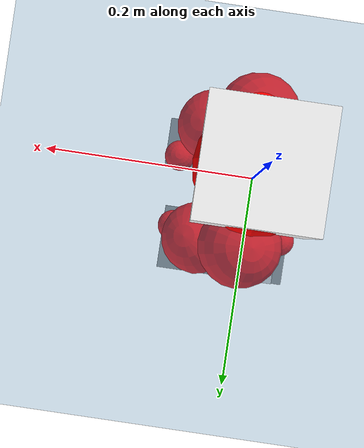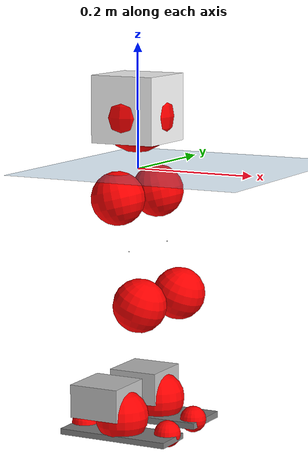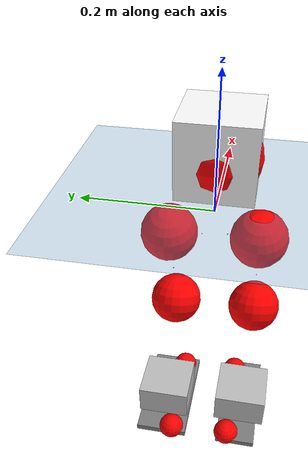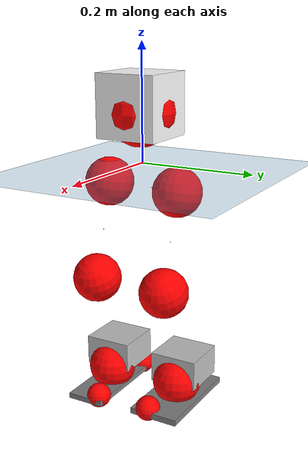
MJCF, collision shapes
<mujoco model="pi_12dof_release_v1">
  <compiler angle="radian" assetdir="assets" balanceinertia="true" inertiafromgeom="false"/>

  <option timestep="0.005" density="1.2" viscosity="2e-05"/>

  <size nkey="1"/>

  <visual>
    <quality shadowsize="8192"/>
    <map shadowclip="0.5"/>
  </visual>

  <default>
    <default class="/">
      <joint armature="0.01" damping="0.01" frictionloss="0.01"/>
      <geom contype="0" conaffinity="0" group="1" solref="-1000 -80"/>
      <site size="0.01 0.005 0.005" group="5"/>
      <general forcelimited="true" biastype="affine" gainprm="20" biasprm="0 -20 -0.5"/>
      <default class="foot">
        <geom size="0.0845 0.036 0.005" type="box" condim="6" group="4" priority="1" friction="0.9 0.2 0.2" solimp="0.015 1 0.005"/>
      </default>
      <default class="reward_collision_sphere">
        <geom group="5" rgba="1 0 0 1"/>
      </default>
    </default>
  </default>

  <asset>
    <texture type="skybox" colorspace="auto" name="//unnamed_texture_0" builtin="gradient" rgb1="0.95 0.95 0.95" rgb2="0.95 0.95 0.95" width="100" height="600"/>
    <texture type="2d" colorspace="auto" name="texplane" builtin="checker" rgb1="0.345 0.575 0.748" rgb2="0.345 0.575 0.748" markrgb="1 1 1" width="512" height="512"/>
    <material name="MatPlane" class="/" texture="texplane" texuniform="true" texrepeat="2 2" specular="0.9"/>
    <mesh name="baselink_1" class="/" file="baselink_1.STL"/>
    <mesh name="r_hip_pitch_link" class="/" file="r_hip_pitch_link.STL"/>
    <mesh name="r_hip_roll_link" class="/" file="r_hip_roll_link.STL"/>
    <mesh name="r_thigh_link" class="/" file="r_thigh_link.STL"/>
    <mesh name="r_calf_link" class="/" file="r_calf_link.STL"/>
    <mesh name="r_ankle_pitch_link" class="/" file="r_ankle_pitch_link.STL"/>
    <mesh name="r_ankle_roll_link" class="/" file="r_ankle_roll_link.STL"/>
    <mesh name="l_hip_pitch_link" class="/" file="l_hip_pitch_link.STL"/>
    <mesh name="l_hip_roll_link" class="/" file="l_hip_roll_link.STL"/>
    <mesh name="l_thigh_link" class="/" file="l_thigh_link.STL"/>
    <mesh name="l_calf_link" class="/" file="l_calf_link.STL"/>
    <mesh name="l_ankle_pitch_link" class="/" file="l_ankle_pitch_link.STL"/>
    <mesh name="l_ankle_roll_link" class="/" file="l_ankle_roll_link.STL"/>
  </asset>

  <worldbody>
    <geom name="floor" class="/" size="100 100 0.125" type="plane" group="0" material="MatPlane"/>
    <light name="toplight_shadow" class="/" pos="0 0 5" dir="0.0990148 0.0990148 -0.990148" type="directional" ambient="0.04 0.04 0.04" diffuse="0.55 0.55 0.55" specular="0.12 0.12 0.12"/>
    <light name="toplight_fill" class="/" pos="0 0 5" dir="0.0990148 0.0990148 -0.990148" type="directional" castshadow="false" ambient="0.04 0.04 0.04" diffuse="0.3 0.3 0.3" specular="0.08 0.08 0.08"/>
    <body name="trunk" pos="0.000276869 -0.00266326 -0.000372707" quat="1 -2.18654e-05 -5.15476e-06 5.70874e-06">
      <inertial pos="0.00238794 -0.00317081 0.049382" quat="0.689871 0.0176453 0.00799084 0.723673" mass="2.61212" diaginertia="0.016961 0.00435959 0.0113643"/>
      <joint name="//unnamed_joint_0" type="free"/>
      <geom name="//unnamed_geom_1" class="/" type="mesh" density="0" rgba="1 1 1 1" mesh="baselink_1"/>
      <geom name="//unnamed_geom_2" class="/" size="0.0535508 0.0535508 0.0535508" pos="0 0 0.0978877" type="box" rgba="1 1 1 1"/>
      <geom name="//unnamed_geom_3" class="reward_collision_sphere" size="0.0589058" pos="0 0 0.0856517"/>
      <site name="imu" class="/" pos="0.0129781 0.00844783 -0.0132948" size="0.0107102"/>
      <camera name="track" class="/" pos="0 -1.73724 0" quat="0.707107 0.707107 0 0" mode="trackcom"/>
      <camera name="ego_camera" class="/" pos="0.0840622 0 0.220247" quat="-0.5 -0.5 0.5 0.5"/>
      <body name="r_hip_pitch_link" pos="0.00154795 -0.0176251 -0.0379018" quat="0.99214 0.000767206 -0.125129 -0.000928605">
        <inertial pos="0.00147597 -0.0483572 0.00173659" quat="-0.0198285 0.707385 -0.0302886 0.705901" mass="0.436495" diaginertia="0.000191723 4.62547e-05 0.00022797"/>
        <joint name="r_hip_pitch_joint" class="/" pos="0 0 0" axis="0.00283402 -0.999992 0.00272816" range="-1.7554 1.21666" armature="0.010983" damping="0.0126974" frictionloss="0.011172"/>
        <geom name="//unnamed_geom_4" class="/" type="mesh" density="0" rgba="0.75294 0.75294 0.75294 1" mesh="r_hip_pitch_link"/>
        <geom name="//unnamed_geom_5" class="/" size="0.000535508 0.000535508 0.000535508" type="box" rgba="0.75294 0.75294 0.75294 1"/>
        <body name="r_hip_roll_link" pos="-0.0015866 -0.0465337 -0.000590757" quat="0.999999 0.000708667 -0.00103902 -0.000258685">
          <inertial pos="0.00124511 0.00184068 -0.0756659" quat="0.701217 -0.0911446 -0.0869872 0.701727" mass="0.476663" diaginertia="0.000589692 0.000138267 0.000355583"/>
          <joint name="r_hip_roll_joint" class="/" pos="0 0 0" axis="-0.999946 -0.00228103 -0.0101466" range="-0.129394 0.551887" armature="0.00941573" damping="0.0137769" frictionloss="0.0106889"/>
          <geom name="//unnamed_geom_6" class="/" type="mesh" density="0" rgba="0.75294 0.75294 0.75294 1" mesh="r_hip_roll_link"/>
          <geom name="//unnamed_geom_7" class="/" size="0.000535508 0.000535508 0.000535508" type="box" rgba="0.75294 0.75294 0.75294 1"/>
          <geom name="//unnamed_geom_8" class="reward_collision_sphere" size="0.0428406"/>
          <body name="r_thigh_link" pos="-0.00110891 -0.00224148 -0.0850408" quat="1 0.000781116 0.000450231 2.19324e-05">
            <inertial pos="0.00283662 0.00075001 -0.0605286" quat="0.737898 0.674911 -0.000335128 -0.0011514" mass="0.139483" diaginertia="0.000213208 4.82142e-05 0.000153339"/>
            <joint name="r_thigh_joint" class="/" pos="0 0 0" axis="0.000589956 0.00397441 -0.999992" range="-0.349554 0.593631" armature="0.0104003" damping="0.00439004" frictionloss="0.0108265"/>
            <geom name="//unnamed_geom_9" class="/" type="mesh" density="0" rgba="0.75294 0.75294 0.75294 1" mesh="r_thigh_link"/>
            <geom name="//unnamed_geom_10" class="/" size="0.000535508 0.000535508 0.000535508" type="box" rgba="0.75294 0.75294 0.75294 1"/>
            <body name="r_calf_link" pos="-0.00157762 -0.00210399 -0.0865532" quat="0.947708 -5.22708e-05 0.31914 -6.38458e-05">
              <inertial pos="-0.000883852 -0.00173425 -0.0863207" quat="0.999988 -0.0027224 -5.00034e-05 0.00412348" mass="0.96154" diaginertia="0.00624021 0.0016768 0.000493292"/>
              <joint name="r_calf_joint" class="/" pos="0 0 0" axis="-0.00391549 -0.999966 0.00726957" range="-1.60615 0.676262" armature="0.011153" damping="0.00822597" frictionloss="0.0113576"/>
              <geom name="//unnamed_geom_11" class="/" type="mesh" density="0" rgba="0.75294 0.75294 0.75294 1" mesh="r_calf_link"/>
              <geom name="//unnamed_geom_12" class="/" size="0.000535508 0.000535508 0.000535508" type="box" rgba="0.75294 0.75294 0.75294 1"/>
              <geom name="//unnamed_geom_13" class="reward_collision_sphere" size="0.0428406"/>
              <body name="r_ankle_pitch_link" pos="0.00328732 0.00259233 -0.16956" quat="0.980063 0.000335402 -0.198685 0.000207032">
                <inertial pos="0.00401581 0.000776166 5.1919e-05" quat="0.0062144 0.707684 -0.0108348 0.706419" mass="0.230438" diaginertia="0.000561545 0.00011329 0.000338829"/>
                <joint name="r_ankle_pitch_joint" class="/" pos="0 0 0" axis="0.00231196 -0.999905 -0.0136223" range="-1.2752 0.554443" armature="0.0108357" damping="0.0201037" frictionloss="0.0106508"/>
                <geom name="//unnamed_geom_14" class="/" type="mesh" density="0" rgba="0.75294 0.75294 0.75294 1" mesh="r_ankle_pitch_link"/>
                <geom name="//unnamed_geom_15" class="/" size="0.0417696 0.0428406 0.0267754" type="box" rgba="0.75294 0.75294 0.75294 1"/>
                <body name="r_ankle_roll_link" pos="0.0831613 0.00139664 -0.00192202" quat="0.999999 -0.00139945 -7.2251e-05 -5.54921e-05">
                  <inertial pos="-0.0262432 0.000228643 -0.0154386" quat="0.552653 0.429393 0.439367 0.563163" mass="0.633878" diaginertia="0.00197476 0.000507623 0.000772731"/>
                  <joint name="r_ankle_roll_joint" class="/" pos="0 0 0" axis="-0.999998 -0.00163313 -0.000631894" range="-0.200192 0.155839" armature="0.0105676" damping="0.00879173" frictionloss="0.010001"/>
                  <geom name="//unnamed_geom_16" class="/" type="mesh" density="0" rgba="0.75294 0.75294 0.75294 1" mesh="r_ankle_roll_link"/>
                  <geom name="//unnamed_geom_17" class="/" type="mesh" rgba="0.75294 0.75294 0.75294 1" mesh="r_ankle_roll_link"/>
                  <geom name="right_foot" class="foot" size="0.0936427 0.0335134 0.00471334" pos="-0.0571623 0 -0.0538382"/>
                  <geom name="//unnamed_geom_19" class="reward_collision_sphere" size="0.0428406" pos="-0.0560414 0 -0.0244719"/>
                  <geom name="//unnamed_geom_20" class="reward_collision_sphere" size="0.0214203" pos="0.0168124 0.0173724 -0.0489438"/>
                  <geom name="//unnamed_geom_21" class="reward_collision_sphere" size="0.0214203" pos="-0.134499 0.0173724 -0.0489438"/>
                  <site name="right_foot" class="foot" pos="-0.0571623 0 -0.0538382" size="0.0107102"/>
                </body>
              </body>
            </body>
          </body>
        </body>
      </body>
      <body name="l_hip_pitch_link" pos="0.000330495 0.0200401 -0.0405616" quat="0.992192 6.13942e-05 -0.124721 -1.84318e-05">
        <inertial pos="0.00139079 0.0441378 0.000889846" quat="-0.0376312 0.704598 0.027425 0.708077" mass="0.478891" diaginertia="0.000227804 5.2379e-05 0.00027864"/>
        <joint name="l_hip_pitch_joint" class="/" pos="0 0 0" axis="-0.000844339 0.999999 0.000641204" stiffness="0.0100905" range="-1.25489 1.7492" armature="0.0104775" damping="0" frictionloss="0.0119307"/>
        <geom name="//unnamed_geom_22" class="/" type="mesh" density="0" rgba="0.75294 0.75294 0.75294 1" mesh="l_hip_pitch_link"/>
        <geom name="//unnamed_geom_23" class="/" size="0.000535508 0.000535508 0.000535508" type="box" rgba="0.75294 0.75294 0.75294 1"/>
        <body name="l_hip_roll_link" pos="-0.00159139 0.0489302 -0.00229877" quat="1 -0.000222991 3.47753e-05 -9.90114e-05">
          <inertial pos="-0.00278448 0.000409214 -0.0771667" quat="0.703492 -0.0767756 -0.083746 0.701563" mass="0.491837" diaginertia="0.000596136 0.00013848 0.000354808"/>
          <joint name="l_hip_roll_joint" class="/" pos="0 0 0" axis="-0.999932 -0.00935595 -0.0069235" stiffness="0.00131817" range="-0.554127 0.123609" armature="0.0121663" damping="0.00189006" frictionloss="0.0107934"/>
          <geom name="//unnamed_geom_24" class="/" type="mesh" density="0" rgba="0.75294 0.75294 0.75294 1" mesh="l_hip_roll_link"/>
          <geom name="//unnamed_geom_25" class="/" size="0.000535508 0.000535508 0.000535508" type="box" rgba="0.75294 0.75294 0.75294 1"/>
          <geom name="//unnamed_geom_26" class="reward_collision_sphere" size="0.0428406"/>
          <body name="l_thigh_link" pos="-0.00199126 -0.00260018 -0.0842266" quat="1 -0.000378696 -4.97566e-05 6.34193e-05">
            <inertial pos="-1.60479e-05 -0.00111498 -0.057016" quat="0.676117 0.736794 0.000722684 -0.000297846" mass="0.145264" diaginertia="0.000234211 4.77898e-05 0.000162825"/>
            <joint name="l_thigh_joint" class="/" pos="0 0 0" axis="6.13249e-06 0.000154966 -1" range="-0.61825 0.296222" armature="0.00956904" damping="0.0102213" frictionloss="0.0107426"/>
            <geom name="//unnamed_geom_27" class="/" type="mesh" density="0" rgba="0.75294 0.75294 0.75294 1" mesh="l_thigh_link"/>
            <geom name="//unnamed_geom_28" class="/" size="0.000535508 0.000535508 0.000535508" type="box" rgba="0.75294 0.75294 0.75294 1"/>
            <body name="l_calf_link" pos="0.000608653 -7.15456e-06 -0.0872758" quat="0.94798 -0.000820451 0.318328 -0.000295424">
              <inertial pos="-0.00013241 0.00553375 -0.0881878" quat="0.999983 0.0046691 -0.00288205 0.00171581" mass="1.02603" diaginertia="0.00656964 0.00177115 0.000505623"/>
              <joint name="l_calf_joint" class="/" pos="0 0 0" axis="0.0123412 0.999921 0.00228281" range="-0.669296 1.64615" armature="0.0104399" damping="0.00468735" frictionloss="0.0106806"/>
              <geom name="//unnamed_geom_29" class="/" type="mesh" density="0" rgba="0.75294 0.75294 0.75294 1" mesh="l_calf_link"/>
              <geom name="//unnamed_geom_30" class="/" size="0.000535508 0.000535508 0.000535508" type="box" rgba="0.75294 0.75294 0.75294 1"/>
              <geom name="//unnamed_geom_31" class="reward_collision_sphere" size="0.0428406"/>
              <body name="l_ankle_pitch_link" pos="-9.85331e-05 0.00386741 -0.171079" quat="0.979891 0.0010299 -0.199529 0.000276267">
                <inertial pos="0.00520586 -0.00359933 0.00159371" quat="0.00221611 0.705394 0.00229043 0.708808" mass="0.211955" diaginertia="0.000529447 0.000107804 0.000320659"/>
                <joint name="l_ankle_pitch_joint" class="/" pos="0 0 0" axis="0.00367778 0.999991 0.00202549" range="-0.561471 1.3484" armature="0.0103902" damping="0.00354968" frictionloss="0.0106805"/>
                <geom name="//unnamed_geom_32" class="/" type="mesh" density="0" rgba="0.75294 0.75294 0.75294 1" mesh="l_ankle_pitch_link"/>
                <geom name="//unnamed_geom_33" class="/" size="0.0417696 0.0428406 0.0267754" type="box" rgba="0.75294 0.75294 0.75294 1"/>
                <body name="l_ankle_roll_link" pos="0.0824034 0.000776959 0.00166399" quat="1 2.12313e-05 -0.000259635 -0.000479952">
                  <inertial pos="-0.024622 -0.000401064 -0.0174664" quat="0.559245 0.43016 0.434613 0.559749" mass="0.639272" diaginertia="0.00207834 0.000515344 0.000769723"/>
                  <joint name="l_ankle_roll_joint" class="/" pos="0 0 0" axis="-0.999927 -0.0119567 0.00177524" range="-0.103107 0.101523" armature="0.0120676" damping="0.0242703" frictionloss="0.00921985"/>
                  <geom name="//unnamed_geom_34" class="/" type="mesh" density="0" rgba="0.75294 0.75294 0.75294 1" mesh="l_ankle_roll_link"/>
                  <geom name="//unnamed_geom_35" class="/" type="mesh" rgba="0.75294 0.75294 0.75294 1" mesh="l_ankle_roll_link"/>
                  <geom name="left_foot" class="foot" size="0.0882703 0.0438345 0.00524932" pos="-0.0571623 0 -0.0538382"/>
                  <geom name="//unnamed_geom_37" class="reward_collision_sphere" size="0.0428406" pos="-0.0560414 0 -0.0244719"/>
                  <geom name="//unnamed_geom_38" class="reward_collision_sphere" size="0.0214203" pos="0.0168124 -0.0173724 -0.0489438"/>
                  <geom name="//unnamed_geom_39" class="reward_collision_sphere" size="0.0214203" pos="-0.134499 -0.0173724 -0.0489438"/>
                  <site name="left_foot" class="foot" pos="-0.0571623 0 -0.0538382" size="0.0107102"/>
                </body>
              </body>
            </body>
          </body>
        </body>
      </body>
    </body>
  </worldbody>

  <contact>
    <pair class="/" geom1="floor" geom2="right_foot" name="//unnamed_contact_1"/>
    <pair class="/" geom1="floor" geom2="left_foot" name="//unnamed_contact_0"/>
  </contact>

  <actuator>
    <general name="r_hip_pitch_joint" class="/" joint="r_hip_pitch_joint" forcerange="-23.164 23.164" gainprm="20.4844" biasprm="0 -20.4844 -0.545766"/>
    <general name="r_hip_roll_joint" class="/" joint="r_hip_roll_joint" forcerange="-22.5027 22.5027" gainprm="20.4844" biasprm="0 -20.4844 -0.545766"/>
    <general name="r_thigh_joint" class="/" joint="r_thigh_joint" forcerange="-24.5242 24.5242" gainprm="20.4844" biasprm="0 -20.4844 -0.545766"/>
    <general name="r_calf_joint" class="/" joint="r_calf_joint" forcerange="-20.1234 20.1234" gainprm="20.4844" biasprm="0 -20.4844 -0.545766"/>
    <general name="r_ankle_pitch_joint" class="/" joint="r_ankle_pitch_joint" forcerange="-24.7452 24.7452" gainprm="20.4844" biasprm="0 -20.4844 -0.545766"/>
    <general name="r_ankle_roll_joint" class="/" joint="r_ankle_roll_joint" forcerange="-24.7466 24.7466" gainprm="20.4844" biasprm="0 -20.4844 -0.545766"/>
    <general name="l_hip_pitch_joint" class="/" joint="l_hip_pitch_joint" forcerange="-24.4003 24.4003" gainprm="20.4844" biasprm="0 -20.4844 -0.545766"/>
    <general name="l_hip_roll_joint" class="/" joint="l_hip_roll_joint" forcerange="-20.5828 20.5828" gainprm="20.4844" biasprm="0 -20.4844 -0.545766"/>
    <general name="l_thigh_joint" class="/" joint="l_thigh_joint" forcerange="-22.8426 22.8426" gainprm="20.4844" biasprm="0 -20.4844 -0.545766"/>
    <general name="l_calf_joint" class="/" joint="l_calf_joint" forcerange="-24.7298 24.7298" gainprm="20.4844" biasprm="0 -20.4844 -0.545766"/>
    <general name="l_ankle_pitch_joint" class="/" joint="l_ankle_pitch_joint" forcerange="-24.7282 24.7282" gainprm="20.4844" biasprm="0 -20.4844 -0.545766"/>
    <general name="l_ankle_roll_joint" class="/" joint="l_ankle_roll_joint" forcerange="-24.3527 24.3527" gainprm="20.4844" biasprm="0 -20.4844 -0.545766"/>
  </actuator>

  <sensor>
    <gyro site="imu" name="imu_angular_velocity"/>
    <velocimeter site="imu" name="imu_linear_velocity"/>
    <framelinvel objtype="site" objname="left_foot" name="left_foot_global_linear_velocity"/>
    <framelinvel objtype="site" objname="right_foot" name="right_foot_global_linear_velocity"/>
  </sensor>

  <keyframe>
    <key name="home" qpos="0 0 0.291 1 0 0 0 0.4 0 0 -0.8 0.4 0 -0.4 0 0 0.8 -0.4 0"/>
  </keyframe>
</mujoco>
